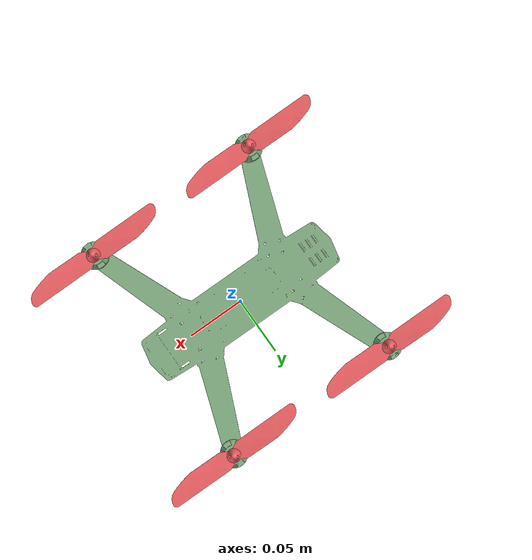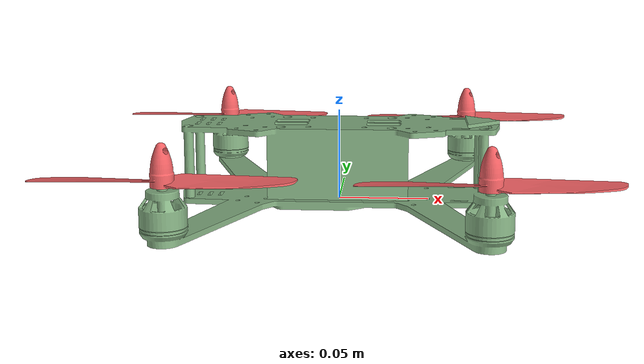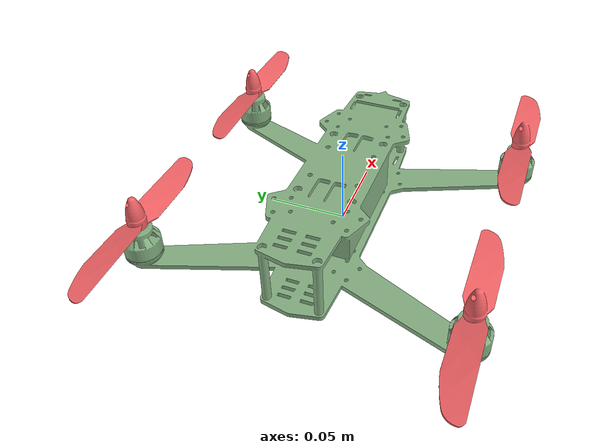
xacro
<?xml version="1.0" ?>
<robot name="quadcopter" xmlns:xacro="http://www.ros.org/wiki/xacro">

<xacro:include filename="$(find quadcopter_ros)/urdf/materials.xacro" />
<xacro:include filename="$(find quadcopter_ros)/urdf/quadcopter.trans" />
<xacro:include filename="$(find quadcopter_ros)/urdf/quadcopter.gazebo" />
<xacro:include filename="$(find quadcopter_ros)/urdf/quadmotor.xacro" />
<xacro:include filename="$(find quadcopter_ros)/urdf/quadsensors.xacro" />
  <!-- making cylinder body approximation-->
  <!-- Inertia constants {-->
  <xacro:property name="mass" value="0.614" /> <!-- [kg] -->
  <xacro:property name="inertia_body_radius" value="0.09" />
  <xacro:property name="inertia_body_height" value="0.043" />
<link name="base_link">
  <inertial>
    <origin xyz="0 0 0.018151764231791677" rpy="0 0 0"/>
    <mass value="${mass}" />  <!-- [kg] -->
    <inertia ixx="${mass * (3 * inertia_body_radius * inertia_body_radius + inertia_body_height * inertia_body_height) / 12}"
    iyy="${mass * (3 * inertia_body_radius * inertia_body_radius + inertia_body_height * inertia_body_height) / 12}"
    izz="${mass * inertia_body_radius * inertia_body_radius / 2}"
    ixy="0" ixz="0" iyz="0"/>
  </inertial>
  <visual>
    <origin xyz="0 0 0" rpy="0 0 0"/>
    <geometry>
      <mesh filename="package://quadcopter_ros/meshes/base_link.stl" scale="0.001 0.001 0.001"/>
    </geometry>
    <material name="plastic_glossy_grey"/>
  </visual>
  <collision>
    <origin xyz="0 0 0" rpy="0 0 0"/>
    <geometry>
      <mesh filename="package://quadcopter_ros/meshes/base_link.stl" scale="0.001 0.001 0.001"/>
    </geometry>
  </collision>
</link>

<link name="prop1_1">
  <inertial>
    <origin xyz="0 0 0" rpy="0 0 0"/>
    <mass value="0.003"/>
    <inertia ixx="0.0001" ixy="0.0" ixz="0.0" iyy="0.0001" iyz="0.0" izz="0.0001"/>
  </inertial>
  <visual>
    <origin xyz="-0.076368 0.099475 -0.03342" rpy="0 0 0"/>
    <geometry>
      <mesh filename="package://quadcopter_ros/meshes/prop1_1.stl" scale="0.001 0.001 0.001"/>
    </geometry>
    <material name="abs_white"/>
  </visual>
  <collision>
    <origin xyz="-0.076368 0.099475 -0.03342" rpy="0 0 0"/>
    <geometry>
      <mesh filename="package://quadcopter_ros/meshes/prop1_1.stl" scale="0.001 0.001 0.001"/>
    </geometry>
  </collision>
</link>

<link name="prop2_1">
  <inertial>
    <origin xyz="0 0 0" rpy="0 0 0"/>
    <mass value="0.003"/>
    <inertia ixx="0.0001" ixy="0.0" ixz="0.0" iyy="0.0001" iyz="0.0" izz="0.0001"/>
  </inertial>
  <visual>
    <origin xyz="0.077777 0.099475 -0.03342" rpy="0 0 0"/>
    <geometry>
      <mesh filename="package://quadcopter_ros/meshes/prop2_1.stl" scale="0.001 0.001 0.001"/>
    </geometry>
    <material name="abs_white"/>
  </visual>
  <collision>
    <origin xyz="0.077777 0.099475 -0.03342" rpy="0 0 0"/>
    <geometry>
      <mesh filename="package://quadcopter_ros/meshes/prop2_1.stl" scale="0.001 0.001 0.001"/>
    </geometry>
  </collision>
</link>

<link name="prop3_1">
  <inertial>
    <origin xyz="0 0 0" rpy="0 0 0"/>
    <mass value="0.003"/>
    <inertia ixx="0.0001" ixy="0.0" ixz="0.0" iyy="0.0001" iyz="0.0" izz="0.0001"/>
  </inertial>
  <visual>
    <origin xyz="0.077777 -0.099475 -0.03342" rpy="0 0 0"/>
    <geometry>
      <mesh filename="package://quadcopter_ros/meshes/prop3_1.stl" scale="0.001 0.001 0.001"/>
    </geometry>
    <material name="abs_white"/>
  </visual>
  <collision>
    <origin xyz="0.077777 -0.099475 -0.03342" rpy="0 0 0"/>
    <geometry>
      <mesh filename="package://quadcopter_ros/meshes/prop3_1.stl" scale="0.001 0.001 0.001"/>
    </geometry>
  </collision>
</link>

<link name="prop4_1">
  <inertial>
    <origin xyz="0 0 0" rpy="0 0 0"/>
    <mass value="0.003"/>
    <inertia ixx="0.0001" ixy="0.0" ixz="0.0" iyy="0.0001" iyz="0.0" izz="0.0001"/>
  </inertial>
  <visual>
    <origin xyz="-0.076368 -0.099474 -0.03342" rpy="0 0 0"/>
    <geometry>
      <mesh filename="package://quadcopter_ros/meshes/prop4_1.stl" scale="0.001 0.001 0.001"/>
    </geometry>
    <material name="abs_white"/>
  </visual>
  <collision>
    <origin xyz="-0.076368 -0.099474 -0.03342" rpy="0 0 0"/>
    <geometry>
      <mesh filename="package://quadcopter_ros/meshes/prop4_1.stl" scale="0.001 0.001 0.001"/>
    </geometry>
  </collision>
</link>

<joint name="propjoint1" type="continuous">
  <origin xyz="0.076368 -0.099475 0.03342" rpy="0 0 0"/>
  <parent link="base_link"/>
  <child link="prop1_1"/>
  <axis xyz="-0.0 0.0 1.0"/>
</joint>

<joint name="propjoint2" type="continuous">
  <origin xyz="-0.077777 -0.099475 0.03342" rpy="0 0 0"/>
  <parent link="base_link"/>
  <child link="prop2_1"/>
  <axis xyz="0.0 0.0 1.0"/>
</joint>

<joint name="propjoint3" type="continuous">
  <origin xyz="-0.077777 0.099475 0.03342" rpy="0 0 0"/>
  <parent link="base_link"/>
  <child link="prop3_1"/>
  <axis xyz="0.0 0.0 1.0"/>
</joint>

<joint name="propjoint4" type="continuous">
  <origin xyz="0.076368 0.099474 0.03342" rpy="0 0 0"/>
  <parent link="base_link"/>
  <child link="prop4_1"/>
  <axis xyz="0.0 0.0 1.0"/>
</joint>

</robot>

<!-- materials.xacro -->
<robot name="quadcopter" xmlns:xacro="http://www.ros.org/wiki/xacro" >

<material name="silver_default">
  <color rgba="0.700 0.700 0.700 1.000"/>
</material>
<material name="plastic_glossy_grey">
  <color rgba="0.5294117647058824 0.7019607843137254 0.5215686274509804 1.0"/>
</material>
<material name="abs_white">
  <color rgba="0.9647058823529412 0.38823529411764707 0.4 1.0"/>
</material>

</robot>

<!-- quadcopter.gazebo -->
<robot name="quadcopter" xmlns:xacro="http://www.ros.org/wiki/xacro" >

<xacro:property name="body_color" value="Gazebo/Silver" />

<gazebo reference="base_link">
  <material>${body_color}</material>
  <mu1>0.2</mu1>
  <mu2>0.2</mu2>
  <selfCollide>true</selfCollide>
  <gravity>true</gravity>
</gazebo>

<gazebo reference="prop1_1">
  <material>${body_color}</material>
  <mu1>0.2</mu1>
  <mu2>0.2</mu2>
  <selfCollide>true</selfCollide>
</gazebo>

<gazebo reference="prop2_1">
  <material>${body_color}</material>
  <mu1>0.2</mu1>
  <mu2>0.2</mu2>
  <selfCollide>true</selfCollide>
</gazebo>

<gazebo reference="prop3_1">
  <material>${body_color}</material>
  <mu1>0.2</mu1>
  <mu2>0.2</mu2>
  <selfCollide>true</selfCollide>
</gazebo>

<gazebo reference="prop4_1">
  <material>${body_color}</material>
  <mu1>0.2</mu1>
  <mu2>0.2</mu2>
  <selfCollide>true</selfCollide>
</gazebo>

</robot>

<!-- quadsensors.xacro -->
<robot name="quadcopter" xmlns:xacro="http://www.ros.org/wiki/xacro">

  <link name="imu_link"></link>
  <joint name="imu_joint" type="fixed">
    <origin rpy="0 0 0" xyz="0 0 0"/>
    <parent link="base_link"/>
    <child link="imu_link"/>
  </joint>

  <joint name="magnometer_joint" type="fixed">
    <origin xyz="0 0 0" rpy="0 0 0"/>
    <parent link="imu_link"/>
    <child link="magnometer_link"/>
  </joint>
  <link name="magnometer_link"> </link>

  <gazebo>
    <plugin filename="libhector_gazebo_ros_imu.so" name="imu_plugin">
      <updateRate>100</updateRate>
      <bodyName>imu_link</bodyName>
      <topicName>sensors/imu</topicName>
      <serviceName>sensors/imu_service</serviceName>
      <!-- Manually prepend namespace to tf frame. -->
      <frameId>imu_link</frameId>
      <alwaysOn>true</alwaysOn>
      <accelOffset>0.0 0.0 0.0</accelOffset>
      <accelDrift>0.0 0.0 0.0</accelDrift>
      <accelDriftFrequency>0.00027 0.00027 0.000027</accelDriftFrequency>
      <accelGaussianNoise>0.0 0.0 0.0</accelGaussianNoise>
      <rateOffset>0.0 0.0 0.0</rateOffset>
      <rateDrift>0.0 0.0 0.0</rateDrift>
      <rateDriftFrequency>0.00027 0.00027 0.000027</rateDriftFrequency>
      <rateGaussianNoise>0.0 0.0 0.0</rateGaussianNoise>
      <yawOffset>0.0</yawOffset>
      <yawDrift>0.0</yawDrift>
      <yawDriftFrequency>0.00027</yawDriftFrequency>
      <yawGaussianNoise>0.0</yawGaussianNoise>
    </plugin>
  </gazebo>

  <gazebo>
    <plugin filename="libhector_gazebo_ros_magnetic.so" name="magnetometer">
      <updateRate>100.0</updateRate>
      <bodyname>magnometer_link</bodyname>
      <topicName>sensors/magnometer</topicName>
      <referenceHeading>0</referenceHeading>
      <magnitude>1</magnitude>
      <declination>2.1367</declination>
      <inclination>72.9993</inclination>
      <offset>0 0 0</offset>
      <driftFrequency>0 0 0</driftFrequency>
      <gaussianNoise>0 0 0</gaussianNoise>
    </plugin>
  </gazebo>

</robot>
